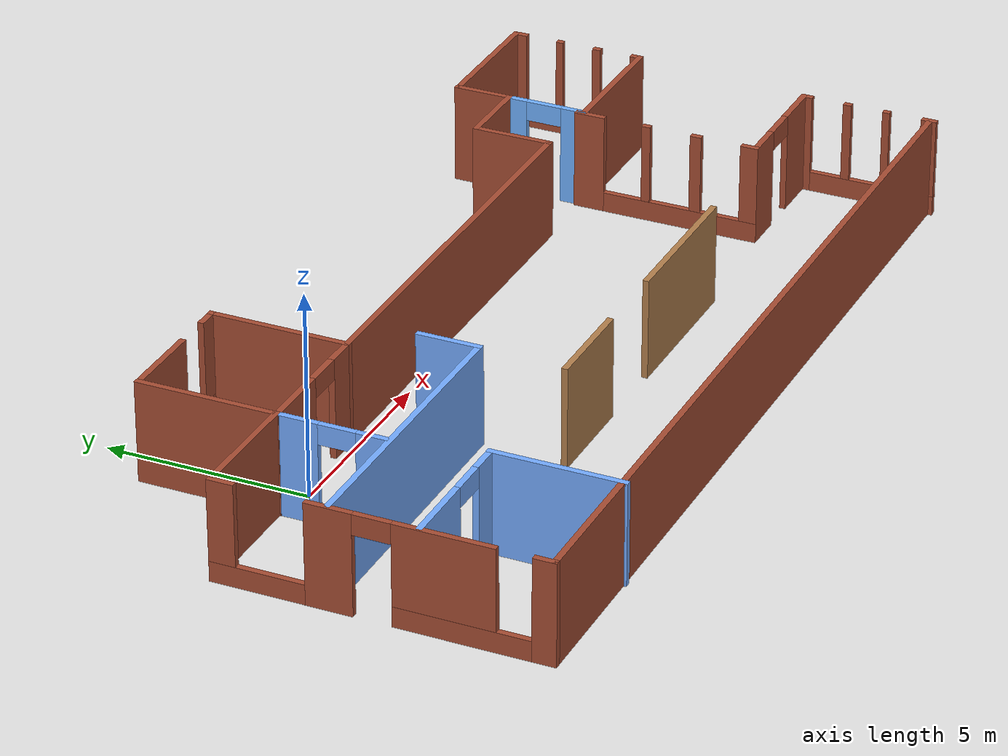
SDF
<?xml version='1.0'?>
<sdf version='1.6'>
  <model name='myhouse'>
    <pose frame=''>7.28446 -2.01844 0 0 -0 0</pose>
    <link name='Wall_11'>
      <collision name='Wall_11_Collision'>
        <geometry>
          <box>
            <size>2.5 0.15 2.5</size>
          </box>
        </geometry>
        <pose frame=''>0 0 1.25 0 -0 0</pose>
      </collision>
      <visual name='Wall_11_Visual'>
        <pose frame=''>0 0 1.25 0 -0 0</pose>
        <geometry>
          <box>
            <size>2.5 0.15 2.5</size>
          </box>
        </geometry>
        <material>
          <script>
            <uri>file://media/materials/scripts/gazebo.material</uri>
            <name>Gazebo/Wood</name>
          </script>
          <ambient>1 1 1 1</ambient>
        </material>
        <meta>
          <layer>0</layer>
        </meta>
      </visual>
      <pose frame=''>-2.61919 -2.4996 0 0 -0 3.14159</pose>
    </link>
    <link name='Wall_15'>
      <collision name='Wall_15_Collision'>
        <geometry>
          <box>
            <size>3.25 0.15 2.5</size>
          </box>
        </geometry>
        <pose frame=''>0 0 1.25 0 -0 0</pose>
      </collision>
      <visual name='Wall_15_Visual'>
        <pose frame=''>0 0 1.25 0 -0 0</pose>
        <geometry>
          <box>
            <size>3.25 0.15 2.5</size>
          </box>
        </geometry>
        <material>
          <script>
            <uri>file://media/materials/scripts/gazebo.material</uri>
            <name>Gazebo/Grey</name>
          </script>
          <ambient>0.454902 0.67451 1 1</ambient>
        </material>
        <meta>
          <layer>0</layer>
        </meta>
      </visual>
      <pose frame=''>-7.68946 -4.0496 0 0 0 -1.5708</pose>
    </link>
    <link name='Wall_19'>
      <pose frame=''>-9.38956 -2.4996 0 0 -0 0</pose>
      <visual name='Wall_19_Visual_0'>
        <pose frame=''>-0.85233 0 1.25 0 -0 0</pose>
        <geometry>
          <box>
            <size>1.84554 0.15 2.5</size>
          </box>
        </geometry>
        <material>
          <script>
            <uri>file://media/materials/scripts/gazebo.material</uri>
            <name>Gazebo/Grey</name>
          </script>
          <ambient>0.454902 0.67451 1 1</ambient>
        </material>
        <meta>
          <layer>0</layer>
        </meta>
      </visual>
      <collision name='Wall_19_Collision_0'>
        <geometry>
          <box>
            <size>1.84554 0.15 2.5</size>
          </box>
        </geometry>
        <pose frame=''>-0.85233 0 1.25 0 -0 0</pose>
      </collision>
      <visual name='Wall_19_Visual_1'>
        <pose frame=''>1.37277 0 1.25 0 -0 0</pose>
        <geometry>
          <box>
            <size>0.804661 0.15 2.5</size>
          </box>
        </geometry>
        <material>
          <script>
            <uri>file://media/materials/scripts/gazebo.material</uri>
            <name>Gazebo/Grey</name>
          </script>
          <ambient>0.454902 0.67451 1 1</ambient>
        </material>
        <meta>
          <layer>0</layer>
        </meta>
      </visual>
      <collision name='Wall_19_Collision_1'>
        <geometry>
          <box>
            <size>0.804661 0.15 2.5</size>
          </box>
        </geometry>
        <pose frame=''>1.37277 0 1.25 0 -0 0</pose>
      </collision>
      <visual name='Wall_19_Visual_2'>
        <pose frame=''>0.520439 0 2.25 0 -0 0</pose>
        <geometry>
          <box>
            <size>0.9 0.15 0.5</size>
          </box>
        </geometry>
        <material>
          <script>
            <uri>file://media/materials/scripts/gazebo.material</uri>
            <name>Gazebo/Grey</name>
          </script>
          <ambient>0.454902 0.67451 1 1</ambient>
        </material>
        <meta>
          <layer>0</layer>
        </meta>
      </visual>
      <collision name='Wall_19_Collision_2'>
        <geometry>
          <box>
            <size>0.9 0.15 0.5</size>
          </box>
        </geometry>
        <pose frame=''>0.520439 0 2.25 0 -0 0</pose>
      </collision>
    </link>
    <link name='Wall_2'>
      <collision name='Wall_2_Collision'>
        <geometry>
          <box>
            <size>22 0.15 2.5</size>
          </box>
        </geometry>
        <pose frame=''>0 0 1.25 0 -0 0</pose>
      </collision>
      <visual name='Wall_2_Visual'>
        <pose frame=''>0 0 1.25 0 -0 0</pose>
        <geometry>
          <box>
            <size>22 0.15 2.5</size>
          </box>
        </geometry>
        <material>
          <script>
            <uri>file://media/materials/scripts/gazebo.material</uri>
            <name>Gazebo/Bricks</name>
          </script>
          <ambient>1 1 1 1</ambient>
        </material>
        <meta>
          <layer>0</layer>
        </meta>
      </visual>
      <pose frame=''>-0.209472 -5.53843 0 0 -0 3.14159</pose>
    </link>
    <link name='Wall_3'>
      <pose frame=''>-11.1345 -1.61343 0 0 -0 1.5708</pose>
      <visual name='Wall_3_Visual_0'>
        <pose frame=''>-3.72333 0 1.25 0 -0 0</pose>
        <geometry>
          <box>
            <size>0.553331 0.15 2.5</size>
          </box>
        </geometry>
        <material>
          <script>
            <uri>file://media/materials/scripts/gazebo.material</uri>
            <name>Gazebo/Bricks</name>
          </script>
          <ambient>1 1 1 1</ambient>
        </material>
        <meta>
          <layer>0</layer>
        </meta>
      </visual>
      <collision name='Wall_3_Collision_0'>
        <geometry>
          <box>
            <size>0.553331 0.15 2.5</size>
          </box>
        </geometry>
        <pose frame=''>-3.72333 0 1.25 0 -0 0</pose>
      </collision>
      <visual name='Wall_3_Visual_1'>
        <pose frame=''>1.18401 0 1.25 0 -0 0</pose>
        <geometry>
          <box>
            <size>1.11233 0.15 2.5</size>
          </box>
        </geometry>
        <material>
          <script>
            <uri>file://media/materials/scripts/gazebo.material</uri>
            <name>Gazebo/Bricks</name>
          </script>
          <ambient>1 1 1 1</ambient>
        </material>
        <meta>
          <layer>0</layer>
        </meta>
      </visual>
      <collision name='Wall_3_Collision_1'>
        <geometry>
          <box>
            <size>1.11233 0.15 2.5</size>
          </box>
        </geometry>
        <pose frame=''>1.18401 0 1.25 0 -0 0</pose>
      </collision>
      <visual name='Wall_3_Visual_2'>
        <pose frame=''>-1.85941 0 0.25 0 -0 0</pose>
        <geometry>
          <box>
            <size>3.17451 0.15 0.5</size>
          </box>
        </geometry>
        <material>
          <script>
            <uri>file://media/materials/scripts/gazebo.material</uri>
            <name>Gazebo/Bricks</name>
          </script>
          <ambient>1 1 1 1</ambient>
        </material>
        <meta>
          <layer>0</layer>
        </meta>
      </visual>
      <collision name='Wall_3_Collision_2'>
        <geometry>
          <box>
            <size>3.17451 0.15 0.5</size>
          </box>
        </geometry>
        <pose frame=''>-1.85941 0 0.25 0 -0 0</pose>
      </collision>
      <visual name='Wall_3_Visual_3'>
        <pose frame=''>2.87009 0 0.25 0 -0 0</pose>
        <geometry>
          <box>
            <size>2.25983 0.15 0.5</size>
          </box>
        </geometry>
        <material>
          <script>
            <uri>file://media/materials/scripts/gazebo.material</uri>
            <name>Gazebo/Bricks</name>
          </script>
          <ambient>1 1 1 1</ambient>
        </material>
        <meta>
          <layer>0</layer>
        </meta>
      </visual>
      <collision name='Wall_3_Collision_3'>
        <geometry>
          <box>
            <size>2.25983 0.15 0.5</size>
          </box>
        </geometry>
        <pose frame=''>2.87009 0 0.25 0 -0 0</pose>
      </collision>
      <visual name='Wall_3_Visual_4'>
        <pose frame=''>-1.45941 0 1.5 0 -0 0</pose>
        <geometry>
          <box>
            <size>2.37451 0.15 2</size>
          </box>
        </geometry>
        <material>
          <script>
            <uri>file://media/materials/scripts/gazebo.material</uri>
            <name>Gazebo/Bricks</name>
          </script>
          <ambient>1 1 1 1</ambient>
        </material>
        <meta>
          <layer>0</layer>
        </meta>
      </visual>
      <collision name='Wall_3_Collision_4'>
        <geometry>
          <box>
            <size>2.37451 0.15 2</size>
          </box>
        </geometry>
        <pose frame=''>-1.45941 0 1.5 0 -0 0</pose>
      </collision>
      <visual name='Wall_3_Visual_5'>
        <pose frame=''>-1.45941 0 1.5 0 -0 0</pose>
        <geometry>
          <box>
            <size>2.37451 0.15 2</size>
          </box>
        </geometry>
        <material>
          <script>
            <uri>file://media/materials/scripts/gazebo.material</uri>
            <name>Gazebo/Bricks</name>
          </script>
          <ambient>1 1 1 1</ambient>
        </material>
        <meta>
          <layer>0</layer>
        </meta>
      </visual>
      <collision name='Wall_3_Collision_5'>
        <geometry>
          <box>
            <size>2.37451 0.15 2</size>
          </box>
        </geometry>
        <pose frame=''>-1.45941 0 1.5 0 -0 0</pose>
      </collision>
      <visual name='Wall_3_Visual_6'>
        <pose frame=''>3.68259 0 1.5 0 -0 0</pose>
        <geometry>
          <box>
            <size>0.634826 0.15 2</size>
          </box>
        </geometry>
        <material>
          <script>
            <uri>file://media/materials/scripts/gazebo.material</uri>
            <name>Gazebo/Bricks</name>
          </script>
          <ambient>1 1 1 1</ambient>
        </material>
        <meta>
          <layer>0</layer>
        </meta>
      </visual>
      <collision name='Wall_3_Collision_6'>
        <geometry>
          <box>
            <size>0.634826 0.15 2</size>
          </box>
        </geometry>
        <pose frame=''>3.68259 0 1.5 0 -0 0</pose>
      </collision>
      <visual name='Wall_3_Visual_7'>
        <pose frame=''>0.177841 0 2.25 0 -0 0</pose>
        <geometry>
          <box>
            <size>0.9 0.15 0.5</size>
          </box>
        </geometry>
        <material>
          <script>
            <uri>file://media/materials/scripts/gazebo.material</uri>
            <name>Gazebo/Bricks</name>
          </script>
          <ambient>1 1 1 1</ambient>
        </material>
        <meta>
          <layer>0</layer>
        </meta>
      </visual>
      <collision name='Wall_3_Collision_7'>
        <geometry>
          <box>
            <size>0.9 0.15 0.5</size>
          </box>
        </geometry>
        <pose frame=''>0.177841 0 2.25 0 -0 0</pose>
      </collision>
      <visual name='Wall_3_Visual_8'>
        <pose frame=''>0.177841 0 2.25 0 -0 0</pose>
        <geometry>
          <box>
            <size>0.9 0.15 0.5</size>
          </box>
        </geometry>
        <material>
          <script>
            <uri>file://media/materials/scripts/gazebo.material</uri>
            <name>Gazebo/Bricks</name>
          </script>
          <ambient>1 1 1 1</ambient>
        </material>
        <meta>
          <layer>0</layer>
        </meta>
      </visual>
      <collision name='Wall_3_Collision_8'>
        <geometry>
          <box>
            <size>0.9 0.15 0.5</size>
          </box>
        </geometry>
        <pose frame=''>0.177841 0 2.25 0 -0 0</pose>
      </collision>
    </link>
    <link name='Wall_31'>
      <pose frame=''>7.71553 0.011565 0 0 0 -1.5708</pose>
      <visual name='Wall_31_Visual_0'>
        <pose frame=''>-1.98654 0 1.25 0 -0 0</pose>
        <geometry>
          <box>
            <size>0.776912 0.15 2.5</size>
          </box>
        </geometry>
        <material>
          <script>
            <uri>file://media/materials/scripts/gazebo.material</uri>
            <name>Gazebo/Bricks</name>
          </script>
          <ambient>1 1 1 1</ambient>
        </material>
        <meta>
          <layer>0</layer>
        </meta>
      </visual>
      <collision name='Wall_31_Collision_0'>
        <geometry>
          <box>
            <size>0.776912 0.15 2.5</size>
          </box>
        </geometry>
        <pose frame=''>-1.98654 0 1.25 0 -0 0</pose>
      </collision>
      <visual name='Wall_31_Visual_1'>
        <pose frame=''>0.388456 0 0.25 0 -0 0</pose>
        <geometry>
          <box>
            <size>3.97309 0.15 0.5</size>
          </box>
        </geometry>
        <material>
          <script>
            <uri>file://media/materials/scripts/gazebo.material</uri>
            <name>Gazebo/Bricks</name>
          </script>
          <ambient>1 1 1 1</ambient>
        </material>
        <meta>
          <layer>0</layer>
        </meta>
      </visual>
      <collision name='Wall_31_Collision_1'>
        <geometry>
          <box>
            <size>3.97309 0.15 0.5</size>
          </box>
        </geometry>
        <pose frame=''>0.388456 0 0.25 0 -0 0</pose>
      </collision>
      <visual name='Wall_31_Visual_2'>
        <pose frame=''>-0.50417 0 1.5 0 -0 0</pose>
        <geometry>
          <box>
            <size>0.217747 0.15 2</size>
          </box>
        </geometry>
        <material>
          <script>
            <uri>file://media/materials/scripts/gazebo.material</uri>
            <name>Gazebo/Bricks</name>
          </script>
          <ambient>1 1 1 1</ambient>
        </material>
        <meta>
          <layer>0</layer>
        </meta>
      </visual>
      <collision name='Wall_31_Collision_2'>
        <geometry>
          <box>
            <size>0.217747 0.15 2</size>
          </box>
        </geometry>
        <pose frame=''>-0.50417 0 1.5 0 -0 0</pose>
      </collision>
      <visual name='Wall_31_Visual_3'>
        <pose frame=''>0.778026 0 1.5 0 -0 0</pose>
        <geometry>
          <box>
            <size>0.284034 0.15 2</size>
          </box>
        </geometry>
        <material>
          <script>
            <uri>file://media/materials/scripts/gazebo.material</uri>
            <name>Gazebo/Bricks</name>
          </script>
          <ambient>1 1 1 1</ambient>
        </material>
        <meta>
          <layer>0</layer>
        </meta>
      </visual>
      <collision name='Wall_31_Collision_3'>
        <geometry>
          <box>
            <size>0.284034 0.15 2</size>
          </box>
        </geometry>
        <pose frame=''>0.778026 0 1.5 0 -0 0</pose>
      </collision>
      <visual name='Wall_31_Visual_4'>
        <pose frame=''>2.15161 0 1.5 0 -0 0</pose>
        <geometry>
          <box>
            <size>0.446781 0.15 2</size>
          </box>
        </geometry>
        <material>
          <script>
            <uri>file://media/materials/scripts/gazebo.material</uri>
            <name>Gazebo/Bricks</name>
          </script>
          <ambient>1 1 1 1</ambient>
        </material>
        <meta>
          <layer>0</layer>
        </meta>
      </visual>
      <collision name='Wall_31_Collision_4'>
        <geometry>
          <box>
            <size>0.446781 0.15 2</size>
          </box>
        </geometry>
        <pose frame=''>2.15161 0 1.5 0 -0 0</pose>
      </collision>
    </link>
    <link name='Wall_32'>
      <pose frame=''>9.26553 -2.28844 0 0 -0 0</pose>
      <visual name='Wall_32_Visual_0'>
        <pose frame=''>-1.10702 0 1.25 0 -0 0</pose>
        <geometry>
          <box>
            <size>1.03597 0.15 2.5</size>
          </box>
        </geometry>
        <material>
          <script>
            <uri>file://media/materials/scripts/gazebo.material</uri>
            <name>Gazebo/Bricks</name>
          </script>
          <ambient>1 1 1 1</ambient>
        </material>
        <meta>
          <layer>0</layer>
        </meta>
      </visual>
      <collision name='Wall_32_Collision_0'>
        <geometry>
          <box>
            <size>1.03597 0.15 2.5</size>
          </box>
        </geometry>
        <pose frame=''>-1.10702 0 1.25 0 -0 0</pose>
      </collision>
      <visual name='Wall_32_Visual_1'>
        <pose frame=''>0.967984 0 1.25 0 -0 0</pose>
        <geometry>
          <box>
            <size>1.31403 0.15 2.5</size>
          </box>
        </geometry>
        <material>
          <script>
            <uri>file://media/materials/scripts/gazebo.material</uri>
            <name>Gazebo/Bricks</name>
          </script>
          <ambient>1 1 1 1</ambient>
        </material>
        <meta>
          <layer>0</layer>
        </meta>
      </visual>
      <collision name='Wall_32_Collision_1'>
        <geometry>
          <box>
            <size>1.31403 0.15 2.5</size>
          </box>
        </geometry>
        <pose frame=''>0.967984 0 1.25 0 -0 0</pose>
      </collision>
      <visual name='Wall_32_Visual_2'>
        <pose frame=''>-0.139032 0 2.25 0 -0 0</pose>
        <geometry>
          <box>
            <size>0.9 0.15 0.5</size>
          </box>
        </geometry>
        <material>
          <script>
            <uri>file://media/materials/scripts/gazebo.material</uri>
            <name>Gazebo/Bricks</name>
          </script>
          <ambient>1 1 1 1</ambient>
        </material>
        <meta>
          <layer>0</layer>
        </meta>
      </visual>
      <collision name='Wall_32_Collision_2'>
        <geometry>
          <box>
            <size>0.9 0.15 0.5</size>
          </box>
        </geometry>
        <pose frame=''>-0.139032 0 2.25 0 -0 0</pose>
      </collision>
    </link>
    <link name='Wall_33'>
      <pose frame=''>10.8155 -3.96343 0 0 0 -1.5708</pose>
      <visual name='Wall_33_Visual_0'>
        <pose frame=''>-1.59117 0 1.25 0 -0 0</pose>
        <geometry>
          <box>
            <size>0.317656 0.15 2.5</size>
          </box>
        </geometry>
        <material>
          <script>
            <uri>file://media/materials/scripts/gazebo.material</uri>
            <name>Gazebo/Bricks</name>
          </script>
          <ambient>1 1 1 1</ambient>
        </material>
        <meta>
          <layer>0</layer>
        </meta>
      </visual>
      <collision name='Wall_33_Collision_0'>
        <geometry>
          <box>
            <size>0.317656 0.15 2.5</size>
          </box>
        </geometry>
        <pose frame=''>-1.59117 0 1.25 0 -0 0</pose>
      </collision>
      <visual name='Wall_33_Visual_1'>
        <pose frame=''>0.158828 0 0.25 0 -0 0</pose>
        <geometry>
          <box>
            <size>3.18234 0.15 0.5</size>
          </box>
        </geometry>
        <material>
          <script>
            <uri>file://media/materials/scripts/gazebo.material</uri>
            <name>Gazebo/Bricks</name>
          </script>
          <ambient>1 1 1 1</ambient>
        </material>
        <meta>
          <layer>0</layer>
        </meta>
      </visual>
      <collision name='Wall_33_Collision_1'>
        <geometry>
          <box>
            <size>3.18234 0.15 0.5</size>
          </box>
        </geometry>
        <pose frame=''>0.158828 0 0.25 0 -0 0</pose>
      </collision>
      <visual name='Wall_33_Visual_2'>
        <pose frame=''>-0.526941 0 1.5 0 -0 0</pose>
        <geometry>
          <box>
            <size>0.210808 0.15 2</size>
          </box>
        </geometry>
        <material>
          <script>
            <uri>file://media/materials/scripts/gazebo.material</uri>
            <name>Gazebo/Bricks</name>
          </script>
          <ambient>1 1 1 1</ambient>
        </material>
        <meta>
          <layer>0</layer>
        </meta>
      </visual>
      <collision name='Wall_33_Collision_2'>
        <geometry>
          <box>
            <size>0.210808 0.15 2</size>
          </box>
        </geometry>
        <pose frame=''>-0.526941 0 1.5 0 -0 0</pose>
      </collision>
      <visual name='Wall_33_Visual_3'>
        <pose frame=''>0.470567 0 1.5 0 -0 0</pose>
        <geometry>
          <box>
            <size>0.184207 0.15 2</size>
          </box>
        </geometry>
        <material>
          <script>
            <uri>file://media/materials/scripts/gazebo.material</uri>
            <name>Gazebo/Bricks</name>
          </script>
          <ambient>1 1 1 1</ambient>
        </material>
        <meta>
          <layer>0</layer>
        </meta>
      </visual>
      <collision name='Wall_33_Collision_3'>
        <geometry>
          <box>
            <size>0.184207 0.15 2</size>
          </box>
        </geometry>
        <pose frame=''>0.470567 0 1.5 0 -0 0</pose>
      </collision>
      <visual name='Wall_33_Visual_4'>
        <pose frame=''>1.55634 0 1.5 0 -0 0</pose>
        <geometry>
          <box>
            <size>0.38733 0.15 2</size>
          </box>
        </geometry>
        <material>
          <script>
            <uri>file://media/materials/scripts/gazebo.material</uri>
            <name>Gazebo/Bricks</name>
          </script>
          <ambient>1 1 1 1</ambient>
        </material>
        <meta>
          <layer>0</layer>
        </meta>
      </visual>
      <collision name='Wall_33_Collision_4'>
        <geometry>
          <box>
            <size>0.38733 0.15 2</size>
          </box>
        </geometry>
        <pose frame=''>1.55634 0 1.5 0 -0 0</pose>
      </collision>
    </link>
    <link name='Wall_35'>
      <collision name='Wall_35_Collision'>
        <geometry>
          <box>
            <size>1.58809 0.15 2.5</size>
          </box>
        </geometry>
        <pose frame=''>0 0 1.25 0 -0 0</pose>
      </collision>
      <visual name='Wall_35_Visual'>
        <pose frame=''>0 0 1.25 0 -0 0</pose>
        <geometry>
          <box>
            <size>1.58809 0.15 2.5</size>
          </box>
        </geometry>
        <material>
          <script>
            <uri>file://media/materials/scripts/gazebo.material</uri>
            <name>Gazebo/Grey</name>
          </script>
          <ambient>0.454902 0.67451 1 1</ambient>
        </material>
        <meta>
          <layer>0</layer>
        </meta>
      </visual>
      <pose frame=''>-3.73412 0.324327 0 0 -0 1.5708</pose>
    </link>
    <link name='Wall_38'>
      <collision name='Wall_38_Collision'>
        <geometry>
          <box>
            <size>7.5 0.15 2.5</size>
          </box>
        </geometry>
        <pose frame=''>0 0 1.25 0 -0 0</pose>
      </collision>
      <visual name='Wall_38_Visual'>
        <pose frame=''>0 0 1.25 0 -0 0</pose>
        <geometry>
          <box>
            <size>7.5 0.15 2.5</size>
          </box>
        </geometry>
        <material>
          <script>
            <uri>file://media/materials/scripts/gazebo.material</uri>
            <name>Gazebo/Grey</name>
          </script>
          <ambient>0.454902 0.67451 1 1</ambient>
        </material>
        <meta>
          <layer>0</layer>
        </meta>
      </visual>
      <pose frame=''>-7.40912 -0.394716 0 0 -0 3.14159</pose>
    </link>
    <link name='Wall_42'>
      <collision name='Wall_42_Collision'>
        <geometry>
          <box>
            <size>2.04626 0.15 2.5</size>
          </box>
        </geometry>
        <pose frame=''>0 0 1.25 0 -0 0</pose>
      </collision>
      <visual name='Wall_42_Visual'>
        <pose frame=''>0 0 1.25 0 -0 0</pose>
        <geometry>
          <box>
            <size>2.04626 0.15 2.5</size>
          </box>
        </geometry>
        <material>
          <script>
            <uri>file://media/materials/scripts/gazebo.material</uri>
            <name>Gazebo/Bricks</name>
          </script>
          <ambient>1 1 1 1</ambient>
        </material>
        <meta>
          <layer>0</layer>
        </meta>
      </visual>
      <pose frame=''>5.93447 3.23657 0 0 -0 1.5708</pose>
    </link>
    <link name='Wall_43'>
      <collision name='Wall_43_Collision'>
        <geometry>
          <box>
            <size>2 0.15 2.5</size>
          </box>
        </geometry>
        <pose frame=''>0 0 1.25 0 -0 0</pose>
      </collision>
      <visual name='Wall_43_Visual'>
        <pose frame=''>0 0 1.25 0 -0 0</pose>
        <geometry>
          <box>
            <size>2 0.15 2.5</size>
          </box>
        </geometry>
        <material>
          <script>
            <uri>file://media/materials/scripts/gazebo.material</uri>
            <name>Gazebo/Bricks</name>
          </script>
          <ambient>1 1 1 1</ambient>
        </material>
        <meta>
          <layer>0</layer>
        </meta>
      </visual>
      <pose frame=''>6.85947 4.1847 0 0 -0 0</pose>
    </link>
    <link name='Wall_44'>
      <collision name='Wall_44_Collision'>
        <geometry>
          <box>
            <size>1.5 0.15 2.5</size>
          </box>
        </geometry>
        <pose frame=''>0 0 1.25 0 -0 0</pose>
      </collision>
      <visual name='Wall_44_Visual'>
        <pose frame=''>0 0 1.25 0 -0 0</pose>
        <geometry>
          <box>
            <size>1.5 0.15 2.5</size>
          </box>
        </geometry>
        <material>
          <script>
            <uri>file://media/materials/scripts/gazebo.material</uri>
            <name>Gazebo/Bricks</name>
          </script>
          <ambient>1 1 1 1</ambient>
        </material>
        <meta>
          <layer>0</layer>
        </meta>
      </visual>
      <pose frame=''>7.78447 4.8597 0 0 -0 1.5708</pose>
    </link>
    <link name='Wall_45'>
      <collision name='Wall_45_Collision'>
        <geometry>
          <box>
            <size>3.5 0.15 2.5</size>
          </box>
        </geometry>
        <pose frame=''>0 0 1.25 0 -0 0</pose>
      </collision>
      <visual name='Wall_45_Visual'>
        <pose frame=''>0 0 1.25 0 -0 0</pose>
        <geometry>
          <box>
            <size>3.5 0.15 2.5</size>
          </box>
        </geometry>
        <material>
          <script>
            <uri>file://media/materials/scripts/gazebo.material</uri>
            <name>Gazebo/Bricks</name>
          </script>
          <ambient>1 1 1 1</ambient>
        </material>
        <meta>
          <layer>0</layer>
        </meta>
      </visual>
      <pose frame=''>9.45947 5.5347 0 0 -0 0</pose>
    </link>
    <link name='Wall_46'>
      <pose frame=''>11.1345 3.8597 0 0 0 -1.5708</pose>
      <visual name='Wall_46_Visual_0'>
        <pose frame=''>-1.54994 0 1.25 0 -0 0</pose>
        <geometry>
          <box>
            <size>0.400128 0.15 2.5</size>
          </box>
        </geometry>
        <material>
          <script>
            <uri>file://media/materials/scripts/gazebo.material</uri>
            <name>Gazebo/Bricks</name>
          </script>
          <ambient>1 1 1 1</ambient>
        </material>
        <meta>
          <layer>0</layer>
        </meta>
      </visual>
      <collision name='Wall_46_Collision_0'>
        <geometry>
          <box>
            <size>0.400128 0.15 2.5</size>
          </box>
        </geometry>
        <pose frame=''>-1.54994 0 1.25 0 -0 0</pose>
      </collision>
      <visual name='Wall_46_Visual_1'>
        <pose frame=''>0.200064 0 0.25 0 -0 0</pose>
        <geometry>
          <box>
            <size>3.09987 0.15 0.5</size>
          </box>
        </geometry>
        <material>
          <script>
            <uri>file://media/materials/scripts/gazebo.material</uri>
            <name>Gazebo/Bricks</name>
          </script>
          <ambient>1 1 1 1</ambient>
        </material>
        <meta>
          <layer>0</layer>
        </meta>
      </visual>
      <collision name='Wall_46_Collision_1'>
        <geometry>
          <box>
            <size>3.09987 0.15 0.5</size>
          </box>
        </geometry>
        <pose frame=''>0.200064 0 0.25 0 -0 0</pose>
      </collision>
      <visual name='Wall_46_Visual_2'>
        <pose frame=''>-0.457768 0 1.5 0 -0 0</pose>
        <geometry>
          <box>
            <size>0.184207 0.15 2</size>
          </box>
        </geometry>
        <material>
          <script>
            <uri>file://media/materials/scripts/gazebo.material</uri>
            <name>Gazebo/Bricks</name>
          </script>
          <ambient>1 1 1 1</ambient>
        </material>
        <meta>
          <layer>0</layer>
        </meta>
      </visual>
      <collision name='Wall_46_Collision_2'>
        <geometry>
          <box>
            <size>0.184207 0.15 2</size>
          </box>
        </geometry>
        <pose frame=''>-0.457768 0 1.5 0 -0 0</pose>
      </collision>
      <visual name='Wall_46_Visual_3'>
        <pose frame=''>0.539739 0 1.5 0 -0 0</pose>
        <geometry>
          <box>
            <size>0.210808 0.15 2</size>
          </box>
        </geometry>
        <material>
          <script>
            <uri>file://media/materials/scripts/gazebo.material</uri>
            <name>Gazebo/Bricks</name>
          </script>
          <ambient>1 1 1 1</ambient>
        </material>
        <meta>
          <layer>0</layer>
        </meta>
      </visual>
      <collision name='Wall_46_Collision_3'>
        <geometry>
          <box>
            <size>0.210808 0.15 2</size>
          </box>
        </geometry>
        <pose frame=''>0.539739 0 1.5 0 -0 0</pose>
      </collision>
      <visual name='Wall_46_Visual_4'>
        <pose frame=''>1.59757 0 1.5 0 -0 0</pose>
        <geometry>
          <box>
            <size>0.304857 0.15 2</size>
          </box>
        </geometry>
        <material>
          <script>
            <uri>file://media/materials/scripts/gazebo.material</uri>
            <name>Gazebo/Bricks</name>
          </script>
          <ambient>1 1 1 1</ambient>
        </material>
        <meta>
          <layer>0</layer>
        </meta>
      </visual>
      <collision name='Wall_46_Collision_4'>
        <geometry>
          <box>
            <size>0.304857 0.15 2</size>
          </box>
        </geometry>
        <pose frame=''>1.59757 0 1.5 0 -0 0</pose>
      </collision>
    </link>
    <link name='Wall_47'>
      <collision name='Wall_47_Collision'>
        <geometry>
          <box>
            <size>3.5 0.15 2.5</size>
          </box>
        </geometry>
        <pose frame=''>0 0 1.25 0 -0 0</pose>
      </collision>
      <visual name='Wall_47_Visual'>
        <pose frame=''>0 0 1.25 0 -0 0</pose>
        <geometry>
          <box>
            <size>3.5 0.15 2.5</size>
          </box>
        </geometry>
        <material>
          <script>
            <uri>file://media/materials/scripts/gazebo.material</uri>
            <name>Gazebo/Bricks</name>
          </script>
          <ambient>1 1 1 1</ambient>
        </material>
        <meta>
          <layer>0</layer>
        </meta>
      </visual>
      <pose frame=''>9.45947 2.1847 0 0 -0 3.14159</pose>
    </link>
    <link name='Wall_48'>
      <pose frame=''>7.78447 3.1847 0 0 -0 1.5708</pose>
      <visual name='Wall_48_Visual_0'>
        <pose frame=''>-0.736453 0 1.25 0 -0 0</pose>
        <geometry>
          <box>
            <size>0.677094 0.15 2.5</size>
          </box>
        </geometry>
        <material>
          <script>
            <uri>file://media/materials/scripts/gazebo.material</uri>
            <name>Gazebo/Grey</name>
          </script>
          <ambient>0.439216 0.694118 1 1</ambient>
        </material>
        <meta>
          <layer>0</layer>
        </meta>
      </visual>
      <collision name='Wall_48_Collision_0'>
        <geometry>
          <box>
            <size>0.677094 0.15 2.5</size>
          </box>
        </geometry>
        <pose frame=''>-0.736453 0 1.25 0 -0 0</pose>
      </collision>
      <visual name='Wall_48_Visual_1'>
        <pose frame=''>0.788547 0 1.25 0 -0 0</pose>
        <geometry>
          <box>
            <size>0.572906 0.15 2.5</size>
          </box>
        </geometry>
        <material>
          <script>
            <uri>file://media/materials/scripts/gazebo.material</uri>
            <name>Gazebo/Grey</name>
          </script>
          <ambient>0.439216 0.694118 1 1</ambient>
        </material>
        <meta>
          <layer>0</layer>
        </meta>
      </visual>
      <collision name='Wall_48_Collision_1'>
        <geometry>
          <box>
            <size>0.572906 0.15 2.5</size>
          </box>
        </geometry>
        <pose frame=''>0.788547 0 1.25 0 -0 0</pose>
      </collision>
      <visual name='Wall_48_Visual_2'>
        <pose frame=''>0.052094 0 2.25 0 -0 0</pose>
        <geometry>
          <box>
            <size>0.9 0.15 0.5</size>
          </box>
        </geometry>
        <material>
          <script>
            <uri>file://media/materials/scripts/gazebo.material</uri>
            <name>Gazebo/Grey</name>
          </script>
          <ambient>0.439216 0.694118 1 1</ambient>
        </material>
        <meta>
          <layer>0</layer>
        </meta>
      </visual>
      <collision name='Wall_48_Collision_2'>
        <geometry>
          <box>
            <size>0.9 0.15 0.5</size>
          </box>
        </geometry>
        <pose frame=''>0.052094 0 2.25 0 -0 0</pose>
      </collision>
    </link>
    <link name='Wall_51'>
      <collision name='Wall_51_Collision'>
        <geometry>
          <box>
            <size>3 0.15 2.5</size>
          </box>
        </geometry>
        <pose frame=''>0 0 1.25 0 -0 0</pose>
      </collision>
      <visual name='Wall_51_Visual'>
        <pose frame=''>0 0 1.25 0 -0 0</pose>
        <geometry>
          <box>
            <size>3 0.15 2.5</size>
          </box>
        </geometry>
        <material>
          <script>
            <uri>file://media/materials/scripts/gazebo.material</uri>
            <name>Gazebo/Bricks</name>
          </script>
          <ambient>1 1 1 1</ambient>
        </material>
        <meta>
          <layer>0</layer>
        </meta>
      </visual>
      <pose frame=''>-9.57884 2.31682 0 0 -0 3.14159</pose>
    </link>
    <link name='Wall_53'>
      <pose frame=''>-8.15384 1.01682 0 0 0 -1.5708</pose>
      <visual name='Wall_53_Visual_0'>
        <pose frame=''>-0.827427 0 1.25 0 -0 0</pose>
        <geometry>
          <box>
            <size>1.09515 0.15 2.5</size>
          </box>
        </geometry>
        <material>
          <script>
            <uri>file://media/materials/scripts/gazebo.material</uri>
            <name>Gazebo/Grey</name>
          </script>
          <ambient>0.454902 0.67451 1 1</ambient>
        </material>
        <meta>
          <layer>0</layer>
        </meta>
      </visual>
      <collision name='Wall_53_Collision_0'>
        <geometry>
          <box>
            <size>1.09515 0.15 2.5</size>
          </box>
        </geometry>
        <pose frame=''>-0.827427 0 1.25 0 -0 0</pose>
      </collision>
      <visual name='Wall_53_Visual_1'>
        <pose frame=''>0.997573 0 1.25 0 -0 0</pose>
        <geometry>
          <box>
            <size>0.754854 0.15 2.5</size>
          </box>
        </geometry>
        <material>
          <script>
            <uri>file://media/materials/scripts/gazebo.material</uri>
            <name>Gazebo/Grey</name>
          </script>
          <ambient>0.454902 0.67451 1 1</ambient>
        </material>
        <meta>
          <layer>0</layer>
        </meta>
      </visual>
      <collision name='Wall_53_Collision_1'>
        <geometry>
          <box>
            <size>0.754854 0.15 2.5</size>
          </box>
        </geometry>
        <pose frame=''>0.997573 0 1.25 0 -0 0</pose>
      </collision>
      <visual name='Wall_53_Visual_2'>
        <pose frame=''>0.170146 0 2.25 0 -0 0</pose>
        <geometry>
          <box>
            <size>0.9 0.15 0.5</size>
          </box>
        </geometry>
        <material>
          <script>
            <uri>file://media/materials/scripts/gazebo.material</uri>
            <name>Gazebo/Grey</name>
          </script>
          <ambient>0.454902 0.67451 1 1</ambient>
        </material>
        <meta>
          <layer>0</layer>
        </meta>
      </visual>
      <collision name='Wall_53_Collision_2'>
        <geometry>
          <box>
            <size>0.9 0.15 0.5</size>
          </box>
        </geometry>
        <pose frame=''>0.170146 0 2.25 0 -0 0</pose>
      </collision>
    </link>
    <link name='Wall_55'>
      <pose frame=''>-1.11553 2.28844 0 0 -0 3.14159</pose>
      <visual name='Wall_55_Visual_0'>
        <pose frame=''>-1.32417 0 1.25 0 -0 0</pose>
        <geometry>
          <box>
            <size>11.6017 0.15 2.5</size>
          </box>
        </geometry>
        <material>
          <script>
            <uri>file://media/materials/scripts/gazebo.material</uri>
            <name>Gazebo/Bricks</name>
          </script>
          <ambient>1 1 1 1</ambient>
        </material>
        <meta>
          <layer>0</layer>
        </meta>
      </visual>
      <collision name='Wall_55_Collision_0'>
        <geometry>
          <box>
            <size>11.6017 0.15 2.5</size>
          </box>
        </geometry>
        <pose frame=''>-1.32417 0 1.25 0 -0 0</pose>
      </collision>
      <visual name='Wall_55_Visual_1'>
        <pose frame=''>6.25084 0 1.25 0 -0 0</pose>
        <geometry>
          <box>
            <size>1.74833 0.15 2.5</size>
          </box>
        </geometry>
        <material>
          <script>
            <uri>file://media/materials/scripts/gazebo.material</uri>
            <name>Gazebo/Bricks</name>
          </script>
          <ambient>1 1 1 1</ambient>
        </material>
        <meta>
          <layer>0</layer>
        </meta>
      </visual>
      <collision name='Wall_55_Collision_1'>
        <geometry>
          <box>
            <size>1.74833 0.15 2.5</size>
          </box>
        </geometry>
        <pose frame=''>6.25084 0 1.25 0 -0 0</pose>
      </collision>
      <visual name='Wall_55_Visual_2'>
        <pose frame=''>4.92667 0 2.25 0 -0 0</pose>
        <geometry>
          <box>
            <size>0.9 0.15 0.5</size>
          </box>
        </geometry>
        <material>
          <script>
            <uri>file://media/materials/scripts/gazebo.material</uri>
            <name>Gazebo/Bricks</name>
          </script>
          <ambient>1 1 1 1</ambient>
        </material>
        <meta>
          <layer>0</layer>
        </meta>
      </visual>
      <collision name='Wall_55_Collision_2'>
        <geometry>
          <box>
            <size>0.9 0.15 0.5</size>
          </box>
        </geometry>
        <pose frame=''>4.92667 0 2.25 0 -0 0</pose>
      </collision>
    </link>
    <link name='Wall_56'>
      <collision name='Wall_56_Collision'>
        <geometry>
          <box>
            <size>3.5 0.15 2.5</size>
          </box>
        </geometry>
        <pose frame=''>0 0 1.25 0 -0 0</pose>
      </collision>
      <visual name='Wall_56_Visual'>
        <pose frame=''>0 0 1.25 0 -0 0</pose>
        <geometry>
          <box>
            <size>3.5 0.15 2.5</size>
          </box>
        </geometry>
        <material>
          <script>
            <uri>file://media/materials/scripts/gazebo.material</uri>
            <name>Gazebo/Bricks</name>
          </script>
          <ambient>1 1 1 1</ambient>
        </material>
        <meta>
          <layer>0</layer>
        </meta>
      </visual>
      <pose frame=''>-8.16553 3.96344 0 0 -0 1.5708</pose>
    </link>
    <link name='Wall_66'>
      <pose frame=''>-6.49053 5.63844 0 0 -0 0</pose>
      <visual name='Wall_66_Visual_0'>
        <pose frame=''>-0.697182 0 1.25 0 -0 0</pose>
        <geometry>
          <box>
            <size>2.10564 0.15 2.5</size>
          </box>
        </geometry>
        <material>
          <script>
            <uri>file://media/materials/scripts/gazebo.material</uri>
            <name>Gazebo/Bricks</name>
          </script>
          <ambient>1 1 1 1</ambient>
        </material>
        <meta>
          <layer>0</layer>
        </meta>
      </visual>
      <collision name='Wall_66_Collision_0'>
        <geometry>
          <box>
            <size>2.10564 0.15 2.5</size>
          </box>
        </geometry>
        <pose frame=''>-0.697182 0 1.25 0 -0 0</pose>
      </collision>
      <visual name='Wall_66_Visual_1'>
        <pose frame=''>1.05282 0 0.25 0 -0 0</pose>
        <geometry>
          <box>
            <size>1.39436 0.15 0.5</size>
          </box>
        </geometry>
        <material>
          <script>
            <uri>file://media/materials/scripts/gazebo.material</uri>
            <name>Gazebo/Bricks</name>
          </script>
          <ambient>1 1 1 1</ambient>
        </material>
        <meta>
          <layer>0</layer>
        </meta>
      </visual>
      <collision name='Wall_66_Collision_1'>
        <geometry>
          <box>
            <size>1.39436 0.15 0.5</size>
          </box>
        </geometry>
        <pose frame=''>1.05282 0 0.25 0 -0 0</pose>
      </collision>
      <visual name='Wall_66_Visual_2'>
        <pose frame=''>1.45282 0 1.5 0 -0 0</pose>
        <geometry>
          <box>
            <size>0.594364 0.15 2</size>
          </box>
        </geometry>
        <material>
          <script>
            <uri>file://media/materials/scripts/gazebo.material</uri>
            <name>Gazebo/Bricks</name>
          </script>
          <ambient>1 1 1 1</ambient>
        </material>
        <meta>
          <layer>0</layer>
        </meta>
      </visual>
      <collision name='Wall_66_Collision_2'>
        <geometry>
          <box>
            <size>0.594364 0.15 2</size>
          </box>
        </geometry>
        <pose frame=''>1.45282 0 1.5 0 -0 0</pose>
      </collision>
    </link>
    <link name='Wall_67'>
      <collision name='Wall_67_Collision'>
        <geometry>
          <box>
            <size>3.5 0.15 2.5</size>
          </box>
        </geometry>
        <pose frame=''>0 0 1.25 0 -0 0</pose>
      </collision>
      <visual name='Wall_67_Visual'>
        <pose frame=''>0 0 1.25 0 -0 0</pose>
        <geometry>
          <box>
            <size>3.5 0.15 2.5</size>
          </box>
        </geometry>
        <material>
          <script>
            <uri>file://media/materials/scripts/gazebo.material</uri>
            <name>Gazebo/Bricks</name>
          </script>
          <ambient>1 1 1 1</ambient>
        </material>
        <meta>
          <layer>0</layer>
        </meta>
      </visual>
      <pose frame=''>-4.81553 3.96344 0 0 0 -1.5708</pose>
    </link>
    <link name='Wall_9'>
      <collision name='Wall_9_Collision'>
        <geometry>
          <box>
            <size>4 0.15 2.5</size>
          </box>
        </geometry>
        <pose frame=''>0 0 1.25 0 -0 0</pose>
      </collision>
      <visual name='Wall_9_Visual'>
        <pose frame=''>0 0 1.25 0 -0 0</pose>
        <geometry>
          <box>
            <size>4 0.15 2.5</size>
          </box>
        </geometry>
        <material>
          <script>
            <uri>file://media/materials/scripts/gazebo.material</uri>
            <name>Gazebo/Wood</name>
          </script>
          <ambient>1 1 1 1</ambient>
        </material>
        <meta>
          <layer>0</layer>
        </meta>
      </visual>
      <pose frame=''>2.53943 -2.52273 0 0 -0 0</pose>
    </link>
    <static>1</static>
  </model>
</sdf>
